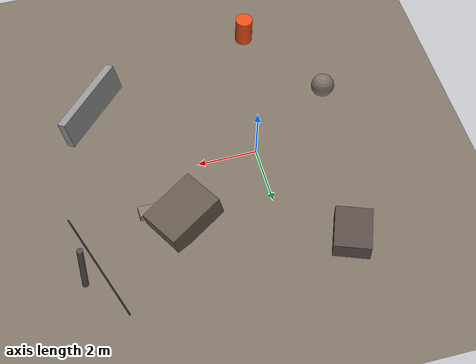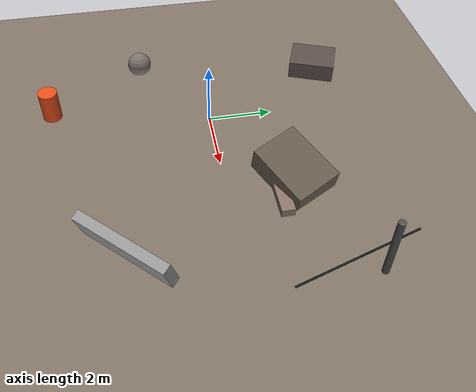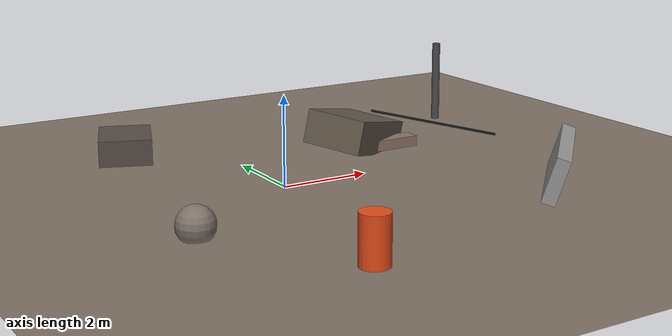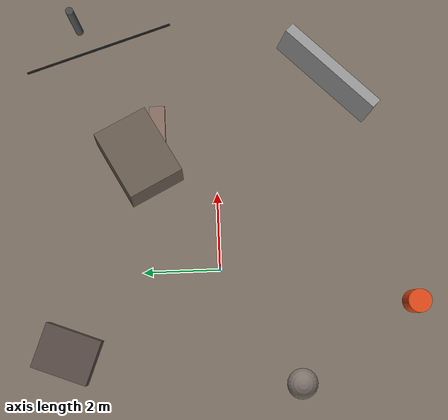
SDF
<?xml version="1.0"?>
<sdf version="1.9">
  <world name="aegis_disaster_zone">

    <physics name="1ms" type="ignored">
      <max_step_size>0.001</max_step_size>
      <real_time_factor>1.0</real_time_factor>
    </physics>

    <plugin filename="gz-sim-physics-system" name="gz::sim::systems::Physics"></plugin>
    <plugin filename="gz-sim-user-commands-system" name="gz::sim::systems::UserCommands"></plugin>
    <plugin filename="gz-sim-scene-broadcaster-system" name="gz::sim::systems::SceneBroadcaster"></plugin>
    <plugin filename="gz-sim-sensors-system" name="gz::sim::systems::Sensors">
      <render_engine>ogre2</render_engine>
    </plugin>
    <plugin filename="gz-sim-thermal-sensor-system" name="gz::sim::systems::Thermal"></plugin>
    <plugin filename="gz-sim-imu-system" name="gz::sim::systems::Imu"></plugin>
    <plugin filename="gz-sim-air-pressure-system" name="gz::sim::systems::AirPressure"></plugin>
    <plugin filename="gz-sim-navsat-system" name="gz::sim::systems::NavSat"></plugin>

    <light type="directional" name="sunUTC">
      <pose>0 0 500 0 0 0</pose>
      <diffuse>0.8 0.8 0.8 1</diffuse>
      <specular>0.2 0.2 0.2 1</specular>
      <direction>0.3 0.3 -0.9</direction>
      <cast_shadows>true</cast_shadows>
    </light>

    <model name="ground_plane">
      <static>true</static>
      <link name="link">
        <collision name="collision">
          <geometry><plane><normal>0 0 1</normal><size>100 100</size></plane></geometry>
        </collision>
        <visual name="visual">
          <geometry><plane><normal>0 0 1</normal><size>100 100</size></plane></geometry>
          <material>
            <ambient>0.5 0.45 0.4 1</ambient>
            <diffuse>0.5 0.45 0.4 1</diffuse>
          </material>
          <!-- Ambient ground temperature ~300K (~27C) -->
          <plugin filename="gz-sim-thermal-sensor-system" name="gz::sim::systems::Thermal">
            <temperature>300</temperature>
          </plugin>
        </visual>
      </link>
    </model>

    <!-- ==================== Disaster scene props ==================== -->

    <!-- Rubble/debris piles — static gray boxes, ambient temperature,
         scattered to force the drone to navigate around obstacles. -->
    <model name="debris_pile_1">
      <static>true</static>
      <pose>3 2 0.4 0.1 0.2 0.5</pose>
      <link name="link">
        <collision name="collision"><geometry><box><size>2 1.5 0.8</size></box></geometry></collision>
        <visual name="visual">
          <geometry><box><size>2 1.5 0.8</size></box></geometry>
          <material><ambient>0.4 0.35 0.3 1</ambient><diffuse>0.4 0.35 0.3 1</diffuse></material>
          <plugin filename="gz-sim-thermal-sensor-system" name="gz::sim::systems::Thermal">
            <temperature>298</temperature>
          </plugin>
        </visual>
      </link>
    </model>

    <model name="debris_pile_2">
      <static>true</static>
      <pose>-2 4 0.3 0 0 1.2</pose>
      <link name="link">
        <collision name="collision"><geometry><box><size>1.5 1.2 0.6</size></box></geometry></collision>
        <visual name="visual">
          <geometry><box><size>1.5 1.2 0.6</size></box></geometry>
          <material><ambient>0.35 0.3 0.28 1</ambient><diffuse>0.35 0.3 0.28 1</diffuse></material>
          <plugin filename="gz-sim-thermal-sensor-system" name="gz::sim::systems::Thermal">
            <temperature>299</temperature>
          </plugin>
        </visual>
      </link>
    </model>

    <model name="collapsed_wall">
      <static>true</static>
      <pose>5 -3 0.5 0.3 0 0.8</pose>
      <link name="link">
        <collision name="collision"><geometry><box><size>3 0.3 1</size></box></geometry></collision>
        <visual name="visual">
          <geometry><box><size>3 0.3 1</size></box></geometry>
          <material><ambient>0.6 0.6 0.6 1</ambient><diffuse>0.6 0.6 0.6 1</diffuse></material>
          <plugin filename="gz-sim-thermal-sensor-system" name="gz::sim::systems::Thermal">
            <temperature>297</temperature>
          </plugin>
        </visual>
      </link>
    </model>

    <model name="victim_signature">
      <static>true</static>
      <pose>3.5 1.5 0.15 0 0 0</pose>
      <link name="link">
        <collision name="collision"><geometry><box><size>1.7 0.4 0.25</size></box></geometry></collision>
        <visual name="visual">
          <geometry><box><size>1.7 0.4 0.25</size></box></geometry>
          <material><ambient>0.55 0.45 0.4 1</ambient><diffuse>0.55 0.45 0.4 1</diffuse></material>
          <plugin filename="gz-sim-thermal-sensor-system" name="gz::sim::systems::Thermal">
            <temperature>310</temperature>
          </plugin>
        </visual>
      </link>
    </model>

    <model name="warm_rock">
      <static>true</static>
      <pose>-3 -2 0.25 0 0 0</pose>
      <link name="link">
        <collision name="collision"><geometry><sphere><radius>0.4</radius></sphere></geometry></collision>
        <visual name="visual">
          <geometry><sphere><radius>0.4</radius></sphere></geometry>
          <material><ambient>0.5 0.45 0.42 1</ambient><diffuse>0.5 0.45 0.42 1</diffuse></material>
          <plugin filename="gz-sim-thermal-sensor-system" name="gz::sim::systems::Thermal">
            <temperature>305</temperature>
          </plugin>
        </visual>
      </link>
    </model>

    <model name="fire_hazard">
      <static>true</static>
      <pose>-1 -5 0.5 0 0 0</pose>
      <link name="link">
        <collision name="collision"><geometry><cylinder><radius>0.3</radius><length>1</length></cylinder></geometry></collision>
        <visual name="visual">
          <geometry><cylinder><radius>0.3</radius><length>1</length></cylinder></geometry>
          <material><ambient>0.9 0.3 0.1 1</ambient><diffuse>0.9 0.3 0.1 1</diffuse><emissive>0.8 0.2 0 1</emissive></material>
          <plugin filename="gz-sim-thermal-sensor-system" name="gz::sim::systems::Thermal">
            <!-- ~600C, well above the fire check's 250C threshold -->
            <temperature>873</temperature>
          </plugin>
        </visual>
      </link>
    </model>

    <!-- DOWNED POWER LINE: linear prop near the "grid infra" marker,
         moderately elevated temperature (short-circuit heating), for
         Section 4's downed-power-line deterministic check. -->
    <model name="downed_power_line">
      <static>true</static>
      <pose>6 3 0.05 0 0 0.3</pose>
      <link name="link">
        <collision name="collision"><geometry><cylinder><radius>0.03</radius><length>4</length></cylinder></geometry></collision>
        <visual name="visual">
          <pose>0 0 0 1.5708 0 0</pose>
          <geometry><cylinder><radius>0.03</radius><length>4</length></cylinder></geometry>
          <material><ambient>0.1 0.1 0.1 1</ambient><diffuse>0.1 0.1 0.1 1</diffuse></material>
          <plugin filename="gz-sim-thermal-sensor-system" name="gz::sim::systems::Thermal">
            <temperature>315</temperature>
          </plugin>
        </visual>
      </link>
    </model>

    <model name="grid_infra_marker">
      <static>true</static>
      <pose>6.5 3.5 1 0 0 0</pose>
      <link name="link">
        <visual name="visual">
          <geometry><cylinder><radius>0.1</radius><length>2</length></cylinder></geometry>
          <material><ambient>0.3 0.3 0.3 1</ambient><diffuse>0.3 0.3 0.3 1</diffuse></material>
        </visual>
      </link>
    </model>

    <!-- ================= end disaster scene props ==================== -->

  </world>
</sdf>
